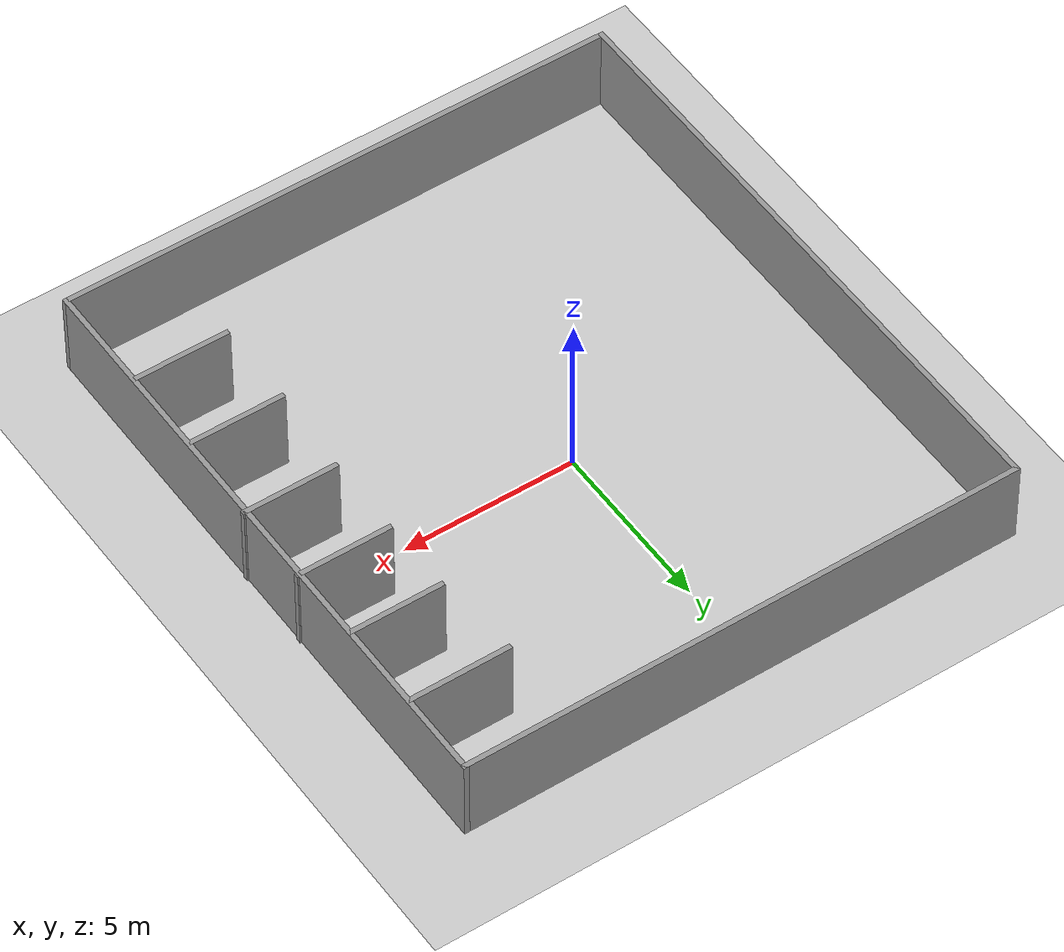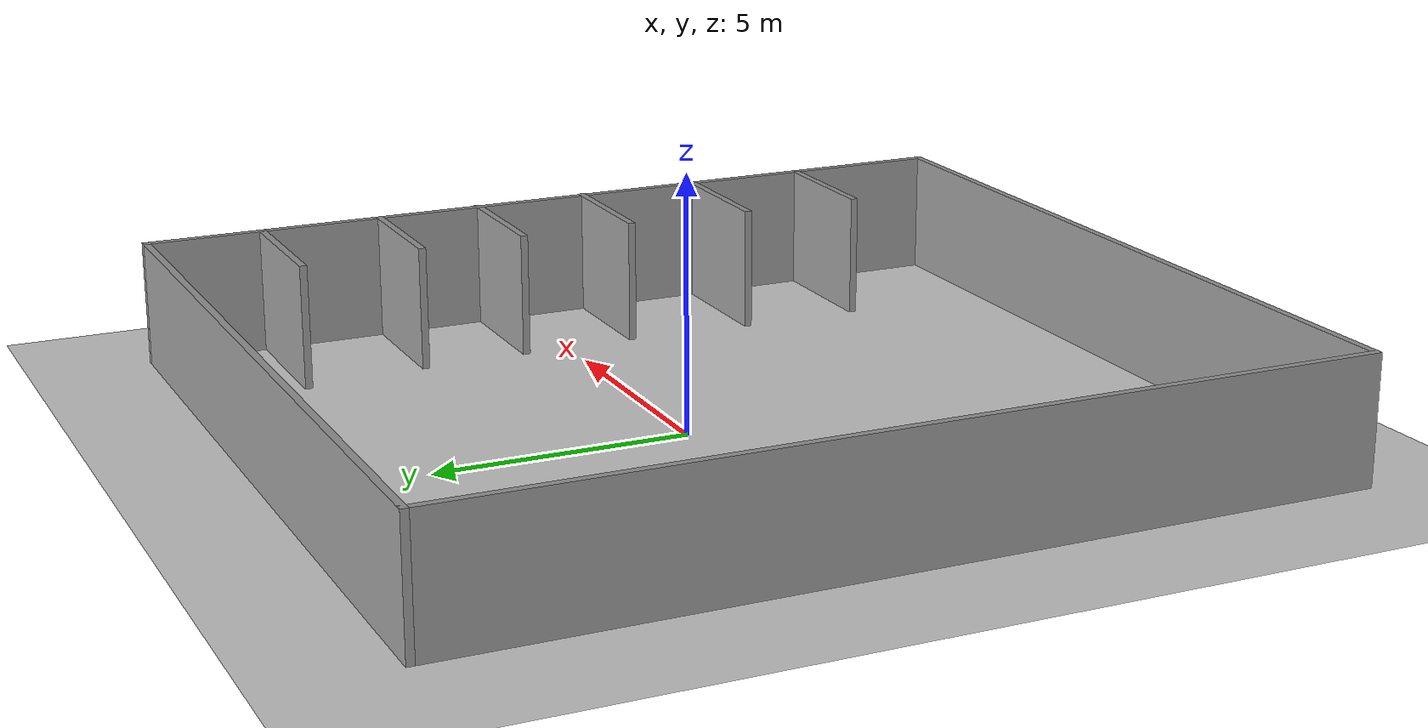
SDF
<sdf version="1.7">
 <world name="default">
  <light name="sun" type="directional">
   <pose>0 0 10 0 -0 0</pose>
   <diffuse>0.8 0.8 0.8 1</diffuse>
   <specular>0.2 0.2 0.2 1</specular>
   <attenuation>
    <range>1000</range>
    <constant>0.9</constant>
    <linear>0.01</linear>
    <quadratic>0.001</quadratic>
   </attenuation>
   <direction>-0.5 0.1 -0.9</direction>
   <spot><inner_angle>0</inner_angle><outer_angle>0</outer_angle><falloff>0</falloff></spot>
  </light>
  <model name="ground_plane">
   <static>1</static>
   <link name="link">
    <collision name="collision">
     <geometry><plane><normal>0 0 1</normal><size>100 100</size></plane></geometry>
     <surface><friction><ode><mu>100</mu><mu2>50</mu2></ode></friction></surface>
    </collision>
    <visual name="visual">
     <cast_shadows>0</cast_shadows>
     <geometry><plane><normal>0 0 1</normal><size>100 100</size></plane></geometry>
     <material>
      <script><uri>file://media/materials/scripts/gazebo.material</uri><name>Gazebo/Grey</name></script>
     </material>
    </visual>
   </link>
  </model>
  <gravity>0 0 -9.8</gravity>
  <magnetic_field>6e-06 2.3e-05 -4.2e-05</magnetic_field>
  <atmosphere type="adiabatic"/>
  <physics type="ode">
   <max_step_size>0.001</max_step_size>
   <real_time_factor>1</real_time_factor>
   <real_time_update_rate>1000</real_time_update_rate>
  </physics>
  <scene><ambient>0.4 0.4 0.4 1</ambient><background>0.7 0.7 0.7 1</background><shadows>1</shadows></scene>
  <audio><device>default</device></audio>
  <spherical_coordinates>
   <surface_model>EARTH_WGS84</surface_model>
   <latitude_deg>0</latitude_deg>
   <longitude_deg>0</longitude_deg>
   <elevation>0</elevation>
   <heading_deg>0</heading_deg>
  </spherical_coordinates>
  <model name="toilet2">
   <pose>0.527522 -0.85275 0 0 -0 0</pose>
   <link name="Wall_1">
    <collision name="Wall_1_Collision">
     <geometry><box><size>17.75 0.15 2.5</size></box></geometry>
     <pose>0 0 1.25 0 -0 0</pose>
    </collision>
    <visual name="Wall_1_Visual">
     <pose>0 0 1.25 0 -0 0</pose>
     <geometry><box><size>17.75 0.15 2.5</size></box></geometry>
     <material>
      <script><uri>file://media/materials/scripts/gazebo.material</uri><name>Gazebo/Grey</name></script>
      <ambient>1 1 1 1</ambient>
     </material>
     <meta><layer>0</layer></meta>
    </visual>
    <pose>8.02687 0 0 0 -0 -1.5708</pose>
   </link>
   <link name="Wall_10">
    <collision name="Wall_10_Collision">
     <geometry><box><size>2.75 0.15 2.5</size></box></geometry>
     <pose>0 0 1.25 0 -0 0</pose>
    </collision>
    <visual name="Wall_10_Visual">
     <pose>0 0 1.25 0 -0 0</pose>
     <geometry><box><size>2.75 0.15 2.5</size></box></geometry>
     <material>
      <script><uri>file://media/materials/scripts/gazebo.material</uri><name>Gazebo/Grey</name></script>
      <ambient>1 1 1 1</ambient>
     </material>
     <meta><layer>0</layer></meta>
    </visual>
    <pose>6.72687 3.94257 0 0 -0 3.14159</pose>
   </link>
   <link name="Wall_12">
    <collision name="Wall_12_Collision">
     <geometry><box><size>2.75 0.15 2.5</size></box></geometry>
     <pose>0 0 1.25 0 -0 0</pose>
    </collision>
    <visual name="Wall_12_Visual">
     <pose>0 0 1.25 0 -0 0</pose>
     <geometry><box><size>2.75 0.15 2.5</size></box></geometry>
     <material>
      <script><uri>file://media/materials/scripts/gazebo.material</uri><name>Gazebo/Grey</name></script>
      <ambient>1 1 1 1</ambient>
     </material>
     <meta><layer>0</layer></meta>
    </visual>
    <pose>6.77313 1.7683 0 0 -0 3.14159</pose>
   </link>
   <link name="Wall_14">
    <collision name="Wall_14_Collision">
     <geometry><box><size>2.75 0.15 2.5</size></box></geometry>
     <pose>0 0 1.25 0 -0 0</pose>
    </collision>
    <visual name="Wall_14_Visual">
     <pose>0 0 1.25 0 -0 0</pose>
     <geometry><box><size>2.75 0.15 2.5</size></box></geometry>
     <material>
      <script><uri>file://media/materials/scripts/gazebo.material</uri><name>Gazebo/Grey</name></script>
      <ambient>1 1 1 1</ambient>
     </material>
     <meta><layer>0</layer></meta>
    </visual>
    <pose>6.77313 -0.591026 0 0 -0 3.14159</pose>
   </link>
   <link name="Wall_16">
    <collision name="Wall_16_Collision">
     <geometry><box><size>2.75 0.15 2.5</size></box></geometry>
     <pose>0 0 1.25 0 -0 0</pose>
    </collision>
    <visual name="Wall_16_Visual">
     <pose>0 0 1.25 0 -0 0</pose>
     <geometry><box><size>2.75 0.15 2.5</size></box></geometry>
     <material>
      <script><uri>file://media/materials/scripts/gazebo.material</uri><name>Gazebo/Grey</name></script>
      <ambient>1 1 1 1</ambient>
     </material>
     <meta><layer>0</layer></meta>
    </visual>
    <pose>6.63435 -3.18165 0 0 -0 3.14159</pose>
   </link>
   <link name="Wall_18">
    <collision name="Wall_18_Collision">
     <geometry><box><size>2.75 0.15 2.5</size></box></geometry>
     <pose>0 0 1.25 0 -0 0</pose>
    </collision>
    <visual name="Wall_18_Visual">
     <pose>0 0 1.25 0 -0 0</pose>
     <geometry><box><size>2.75 0.15 2.5</size></box></geometry>
     <material>
      <script><uri>file://media/materials/scripts/gazebo.material</uri><name>Gazebo/Grey</name></script>
      <ambient>1 1 1 1</ambient>
     </material>
     <meta><layer>0</layer></meta>
    </visual>
    <pose>6.63435 -5.67976 0 0 -0 3.14159</pose>
   </link>
   <link name="Wall_4">
    <collision name="Wall_4_Collision">
     <geometry><box><size>16.25 0.15 2.5</size></box></geometry>
     <pose>0 0 1.25 0 -0 0</pose>
    </collision>
    <visual name="Wall_4_Visual">
     <pose>0 0 1.25 0 -0 0</pose>
     <geometry><box><size>16.25 0.15 2.5</size></box></geometry>
     <material>
      <script><uri>file://media/materials/scripts/gazebo.material</uri><name>Gazebo/Grey</name></script>
      <ambient>1 1 1 1</ambient>
     </material>
     <meta><layer>0</layer></meta>
    </visual>
    <pose>-0.02313 8.8 0 0 -0 3.14159</pose>
   </link>
   <link name="Wall_5">
    <collision name="Wall_5_Collision">
     <geometry><box><size>17.75 0.15 2.5</size></box></geometry>
     <pose>0 0 1.25 0 -0 0</pose>
    </collision>
    <visual name="Wall_5_Visual">
     <pose>0 0 1.25 0 -0 0</pose>
     <geometry><box><size>17.75 0.15 2.5</size></box></geometry>
     <material>
      <script><uri>file://media/materials/scripts/gazebo.material</uri><name>Gazebo/Grey</name></script>
      <ambient>1 1 1 1</ambient>
     </material>
     <meta><layer>0</layer></meta>
    </visual>
    <pose>-8.07313 0 0 0 -0 -1.5708</pose>
   </link>
   <link name="Wall_6">
    <collision name="Wall_6_Collision">
     <geometry><box><size>16.25 0.15 2.5</size></box></geometry>
     <pose>0 0 1.25 0 -0 0</pose>
    </collision>
    <visual name="Wall_6_Visual">
     <pose>0 0 1.25 0 -0 0</pose>
     <geometry><box><size>16.25 0.15 2.5</size></box></geometry>
     <material>
      <script><uri>file://media/materials/scripts/gazebo.material</uri><name>Gazebo/Grey</name></script>
      <ambient>1 1 1 1</ambient>
     </material>
     <meta><layer>0</layer></meta>
    </visual>
    <pose>-0.02313 -8.8 0 0 -0 0</pose>
   </link>
   <link name="Wall_8">
    <collision name="Wall_8_Collision">
     <geometry><box><size>3 0.15 2.5</size></box></geometry>
     <pose>0 0 1.25 0 -0 0</pose>
    </collision>
    <visual name="Wall_8_Visual">
     <pose>0 0 1.25 0 -0 0</pose>
     <geometry><box><size>3 0.15 2.5</size></box></geometry>
     <material>
      <script><uri>file://media/materials/scripts/gazebo.material</uri><name>Gazebo/Grey</name></script>
      <ambient>1 1 1 1</ambient>
     </material>
     <meta><layer>0</layer></meta>
    </visual>
    <pose>6.60187 6.44068 0 0 -0 3.14159</pose>
   </link>
   <static>1</static>
  </model>
 </world>
</sdf>
